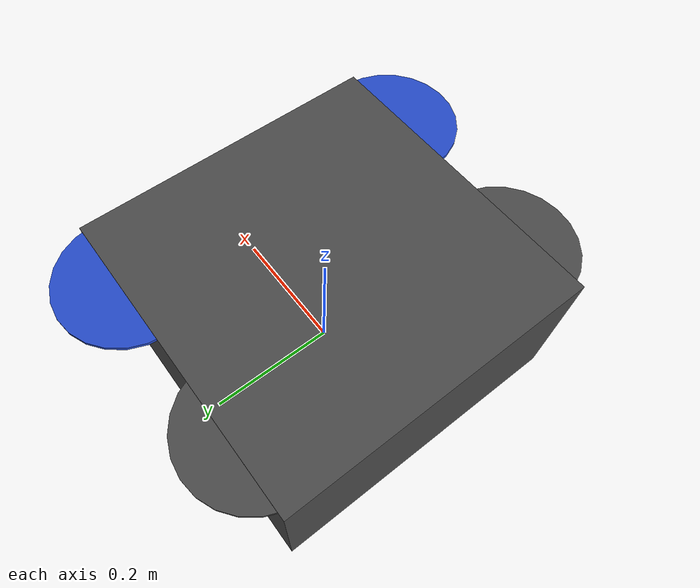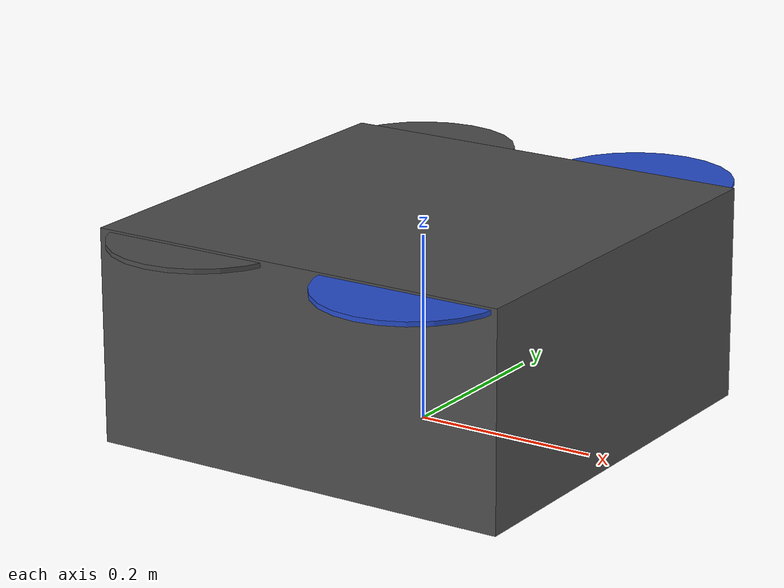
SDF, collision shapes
<?xml version='1.0'?>
<sdf version='1.6'>
  <model name='iris_base'>
    <pose>0 0 0.194923 0 0 0</pose>
    <link name='base_link'>
      <velocity_decay>
        <linear>0.0</linear>
        <angular>0.0</angular>
      </velocity_decay>
      <inertial>
        <pose>0 0 0 0 0 0</pose>
        <mass>1.5</mass>
        <inertia>
          <ixx>0.008</ixx>
          <ixy>0</ixy>
          <ixz>0</ixz>
          <iyy>0.015</iyy>
          <iyz>0</iyz>
          <izz>0.017</izz>
        </inertia>
      </inertial>
      <collision name='base_link_collision'>
        <pose>0 0 -0.08 0 0 0</pose>
        <geometry>
          <box>
            <size>0.47 0.47 0.23</size>
          </box>
        </geometry>
        <surface>
          <contact>
            <ode>
              <max_vel>100.0</max_vel>
              <min_depth>0.001</min_depth>
            </ode>
          </contact>
          <friction>
            <ode>
              <mu>1.0</mu>
              <mu2>1.0</mu2>
            </ode>
          </friction>
        </surface>
      </collision>
      <visual name='base_link_visual'>
        <geometry>
          <mesh>
            <uri>model://iris_base/meshes/iris.dae</uri>
          </mesh>
        </geometry>
        <material>
          <script>
            <name>Gazebo/DarkGrey</name>
          </script>
        </material>
      </visual>

      <visual name='front_left_leg_visual'>
        <pose>0.123 0.22 -0.11 0 0 0</pose>
        <geometry>
          <cylinder>
            <radius>0.005</radius>
            <length>0.17</length>
          </cylinder>
        </geometry>
        <material>
          <script>
            <name>Gazebo/FlatBlack</name>
            <uri>file://media/materials/scripts/gazebo.material</uri>
          </script>
        </material>
      </visual>
      <visual name='front_right_leg_visual'>
        <pose>0.123 -0.22 -0.11 0 0 0</pose>
        <geometry>
          <cylinder>
            <radius>0.005</radius>
            <length>0.17</length>
          </cylinder>
        </geometry>
        <material>
          <script>
            <name>Gazebo/FlatBlack</name>
            <uri>file://media/materials/scripts/gazebo.material</uri>
          </script>
        </material>
      </visual>
      <visual name='rear_left_leg_visual'>
        <pose>-0.140 0.21 -0.11 0 0 0</pose>
        <geometry>
          <cylinder>
            <radius>0.005</radius>
            <length>0.17</length>
          </cylinder>
        </geometry>
        <material>
          <script>
            <name>Gazebo/FlatBlack</name>
            <uri>file://media/materials/scripts/gazebo.material</uri>
          </script>
        </material>
      </visual>
      <visual name='rear_right_leg_visual'>
        <pose>-0.140 -0.21 -0.11 0 0 0</pose>
        <geometry>
          <cylinder>
            <radius>0.005</radius>
            <length>0.17</length>
          </cylinder>
        </geometry>
        <material>
          <script>
            <name>Gazebo/FlatBlack</name>
            <uri>file://media/materials/scripts/gazebo.material</uri>
          </script>
        </material>
      </visual>
    </link>
    <link name='iris/ground_truth/odometry_sensorgt_link'>
      <pose>0 0 0 0 -0 0</pose>
      <inertial>
        <pose>0 0 0 0 -0 0</pose>
        <mass>0.15</mass>
        <inertia>
          <ixx>0.0001</ixx>
          <ixy>0</ixy>
          <ixz>0</ixz>
          <iyy>0.0002</iyy>
          <iyz>0</iyz>
          <izz>0.0002</izz>
        </inertia>
      </inertial>
    </link>
    <joint name='iris/ground_truth/odometry_sensorgt_joint' type='revolute'>
      <child>iris/ground_truth/odometry_sensorgt_link</child>
      <parent>base_link</parent>
      <axis>
        <xyz>0 0 1</xyz>
        <limit>
          <lower>0</lower>
          <upper>0</upper>
          <effort>0</effort>
          <velocity>0</velocity>
        </limit>
        <dynamics>
          <damping>1.0</damping>
        </dynamics>
        <use_parent_model_frame>1</use_parent_model_frame>
      </axis>
      <physics>
        <ode>
          <implicit_spring_damper>1</implicit_spring_damper>
        </ode>
      </physics>
    </joint>
    <link name='iris/imu_link'>
      <inertial>
        <pose>0 0 0 0 0 0</pose>
        <mass>0.15</mass>
        <inertia>
          <ixx>0.00001</ixx>
          <ixy>0</ixy>
          <ixz>0</ixz>
          <iyy>0.00002</iyy>
          <iyz>0</iyz>
          <izz>0.00002</izz>
        </inertia>
      </inertial>
      <sensor name="imu_sensor" type="imu">
        <pose>0 0 0 3.141593 0 0</pose>
        <always_on>1</always_on>
        <update_rate>1000.0</update_rate>
      </sensor>
    </link>
    <joint name='iris/imu_joint' type='revolute'>
      <child>iris/imu_link</child>
      <parent>base_link</parent>
      <axis>
        <xyz>0 0 1</xyz>
        <limit>
          <lower>0</lower>
          <upper>0</upper>
          <effort>0</effort>
          <velocity>0</velocity>
        </limit>
        <dynamics>
          <damping>1.0</damping>
        </dynamics>
        <use_parent_model_frame>1</use_parent_model_frame>
      </axis>
      <physics>
        <ode>
          <implicit_spring_damper>1</implicit_spring_damper>
        </ode>
      </physics>
    </joint>

    <link name='rotor_0'>
      <pose>0.13 -0.22 0.03 0 -0 0</pose>
      <inertial>
        <pose>0 0 0 0 -0 0</pose>
        <mass>0.025</mass>
        <inertia>
          <ixx>9.75e-06</ixx>
          <ixy>0</ixy>
          <ixz>0</ixz>
          <iyy>0.000166704</iyy>
          <iyz>0</iyz>
          <izz>0.000167604</izz>
        </inertia>
      </inertial>
      <collision name='rotor_0_collision'>
        <pose>0 0 0 0 -0 0</pose>
        <geometry>
          <cylinder>
            <length>0.005</length>
            <radius>0.1</radius>
          </cylinder>
        </geometry>
        <surface>
          <contact>
            <ode/>
          </contact>
          <friction>
            <ode/>
          </friction>
        </surface>
      </collision>
      <visual name='rotor_0_visual'>
        <pose>0 0 0 0 -0 0</pose>
        <geometry>
          <mesh>
            <scale>1 1 1</scale>
            <uri>model://iris_base/meshes/iris_prop_ccw.dae</uri>
          </mesh>
        </geometry>
        <material>
          <script>
            <name>Gazebo/Blue</name>
            <uri>__default__</uri>
          </script>
        </material>
      </visual>
      <gravity>1</gravity>
      <velocity_decay/>
      <self_collide>0</self_collide>
    </link>
    <joint name='rotor_0_joint' type='revolute'>
      <child>rotor_0</child>
      <parent>base_link</parent>
      <axis>
        <xyz>0 0 1</xyz>
        <limit>
          <lower>-1e+16</lower>
          <upper>1e+16</upper>
        </limit>
        <dynamics>
          <damping>0.004</damping>
        </dynamics>
        <use_parent_model_frame>1</use_parent_model_frame>
      </axis>
      <physics>
        <ode>
          <implicit_spring_damper>1</implicit_spring_damper>
        </ode>
      </physics>
    </joint>
    <link name='rotor_1'>
      <pose>-0.13 0.2 0.03 0 -0 0</pose>
      <inertial>
        <pose>0 0 0 0 -0 0</pose>
        <mass>0.025</mass>
        <inertia>
          <ixx>9.75e-06</ixx>
          <ixy>0</ixy>
          <ixz>0</ixz>
          <iyy>0.000166704</iyy>
          <iyz>0</iyz>
          <izz>0.000167604</izz>
        </inertia>
      </inertial>
      <collision name='rotor_1_collision'>
        <pose>0 0 0 0 -0 0</pose>
        <geometry>
          <cylinder>
            <length>0.005</length>
            <radius>0.1</radius>
          </cylinder>
        </geometry>
        <surface>
          <contact>
            <ode/>
          </contact>
          <friction>
            <ode/>
          </friction>
        </surface>
      </collision>
      <visual name='rotor_1_visual'>
        <pose>0 0 0 0 -0 0</pose>
        <geometry>
          <mesh>
            <scale>1 1 1</scale>
            <uri>model://iris_base/meshes/iris_prop_ccw.dae</uri>
          </mesh>
        </geometry>
        <material>
          <script>
            <name>Gazebo/DarkGrey</name>
            <uri>__default__</uri>
          </script>
        </material>
      </visual>
      <gravity>1</gravity>
      <velocity_decay/>
      <self_collide>0</self_collide>
    </link>
    <joint name='rotor_1_joint' type='revolute'>
      <child>rotor_1</child>
      <parent>base_link</parent>
      <axis>
        <xyz>0 0 1</xyz>
        <limit>
          <lower>-1e+16</lower>
          <upper>1e+16</upper>
        </limit>
        <dynamics>
          <damping>0.004</damping>
        </dynamics>
        <use_parent_model_frame>1</use_parent_model_frame>
      </axis>
      <physics>
        <ode>
          <implicit_spring_damper>1</implicit_spring_damper>
        </ode>
      </physics>
    </joint>
    <link name='rotor_2'>
      <pose>0.13 0.22 0.03 0 -0 0</pose>
      <inertial>
        <pose>0 0 0 0 -0 0</pose>
        <mass>0.025</mass>
        <inertia>
          <ixx>9.75e-06</ixx>
          <ixy>0</ixy>
          <ixz>0</ixz>
          <iyy>0.000166704</iyy>
          <iyz>0</iyz>
          <izz>0.000167604</izz>
        </inertia>
      </inertial>
      <collision name='rotor_2_collision'>
        <pose>0 0 0 0 -0 0</pose>
        <geometry>
          <cylinder>
            <length>0.005</length>
            <radius>0.1</radius>
          </cylinder>
        </geometry>
        <surface>
          <contact>
            <ode/>
          </contact>
          <friction>
            <ode/>
          </friction>
        </surface>
      </collision>
      <visual name='rotor_2_visual'>
        <pose>0 0 0 0 -0 0</pose>
        <geometry>
          <mesh>
            <scale>1 1 1</scale>
            <uri>model://iris_base/meshes/iris_prop_cw.dae</uri>
          </mesh>
        </geometry>
        <material>
          <script>
            <name>Gazebo/Blue</name>
            <uri>__default__</uri>
          </script>
        </material>
      </visual>
      <gravity>1</gravity>
      <velocity_decay/>
      <self_collide>0</self_collide>
    </link>
    <joint name='rotor_2_joint' type='revolute'>
      <child>rotor_2</child>
      <parent>base_link</parent>
      <axis>
        <xyz>0 0 1</xyz>
        <limit>
          <lower>-1e+16</lower>
          <upper>1e+16</upper>
        </limit>
        <dynamics>
          <damping>0.004</damping>
        </dynamics>
        <use_parent_model_frame>1</use_parent_model_frame>
      </axis>
      <physics>
        <ode>
          <implicit_spring_damper>1</implicit_spring_damper>
        </ode>
      </physics>
    </joint>
    <link name='rotor_3'>
      <pose>-0.13 -0.2 0.03 0 -0 0</pose>
      <inertial>
        <pose>0 0 0 0 -0 0</pose>
        <mass>0.025</mass>
        <inertia>
          <ixx>9.75e-06</ixx>
          <ixy>0</ixy>
          <ixz>0</ixz>
          <iyy>0.000166704</iyy>
          <iyz>0</iyz>
          <izz>0.000167604</izz>
        </inertia>
      </inertial>
      <collision name='rotor_3_collision'>
        <pose>0 0 0 0 -0 0</pose>
        <geometry>
          <cylinder>
            <length>0.005</length>
            <radius>0.1</radius>
          </cylinder>
        </geometry>
        <surface>
          <contact>
            <ode/>
          </contact>
          <friction>
            <ode/>
          </friction>
        </surface>
      </collision>
      <visual name='rotor_3_visual'>
        <pose>0 0 0 0 -0 0</pose>
        <geometry>
          <mesh>
            <scale>1 1 1</scale>
            <uri>model://iris_base/meshes/iris_prop_cw.dae</uri>
          </mesh>
        </geometry>
        <material>
          <script>
            <name>Gazebo/DarkGrey</name>
            <uri>__default__</uri>
          </script>
        </material>
      </visual>
      <gravity>1</gravity>
      <velocity_decay/>
      <self_collide>0</self_collide>
    </link>
    <joint name='rotor_3_joint' type='revolute'>
      <child>rotor_3</child>
      <parent>base_link</parent>
      <axis>
        <xyz>0 0 1</xyz>
        <limit>
          <lower>-1e+16</lower>
          <upper>1e+16</upper>
        </limit>
        <dynamics>
          <damping>0.004</damping>
        </dynamics>
        <use_parent_model_frame>1</use_parent_model_frame>
      </axis>
      <physics>
        <ode>
          <implicit_spring_damper>1</implicit_spring_damper>
        </ode>
      </physics>
    </joint>
    <static>0</static>

    <link name="chase_cam_link">
        <pose>0 0 0 0 0 0 </pose>
        <inertial>
          <mass>0.01</mass>
          <inertia>
            <ixx>0.0001</ixx>
            <iyy>0.0001</iyy>
            <izz>0.0001</izz>
          </inertia>
        </inertial>
      <sensor name="chase_cam" type="camera">
        <pose>-2 0 0.6 0 0.37 0</pose>
        <camera>
          <horizontal_fov>1.2</horizontal_fov>
          <image>
            <width>1920</width>
            <height>1080</height>
          </image>
          <clip>
            <near>0.1</near>
            <far>1000</far>
          </clip>
        </camera>
        <always_on>0</always_on>
        <update_rate>60</update_rate>
        <visualize>true</visualize>
        <plugin name="camera_controller" filename="libgazebo_ros_camera.so">
          <alwaysOn>true</alwaysOn>
          <updateRate>0.0</updateRate>
          <cameraName>chase_cam</cameraName>
          <imageTopicName>image_raw</imageTopicName>
          <cameraInfoTopicName>camera_info</cameraInfoTopicName>
          <frameName>chase_cam_link</frameName>
          <hackBaseline>0.07</hackBaseline>
          <distortionK1>0.0</distortionK1>
          <distortionK2>0.0</distortionK2>
          <distortionK3>0.0</distortionK3>
          <distortionT1>0.0</distortionT1>
          <distortionT2>0.0</distortionT2>
        </plugin>
      </sensor>
    </link>

  </model>
</sdf>
